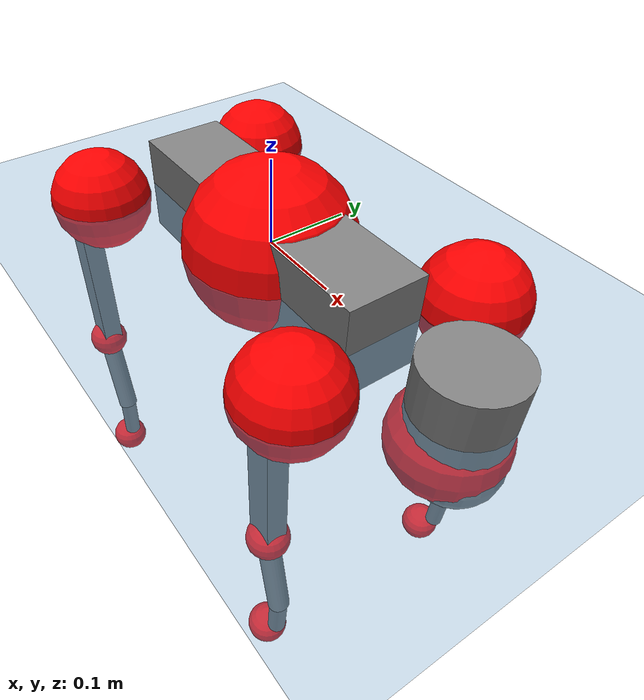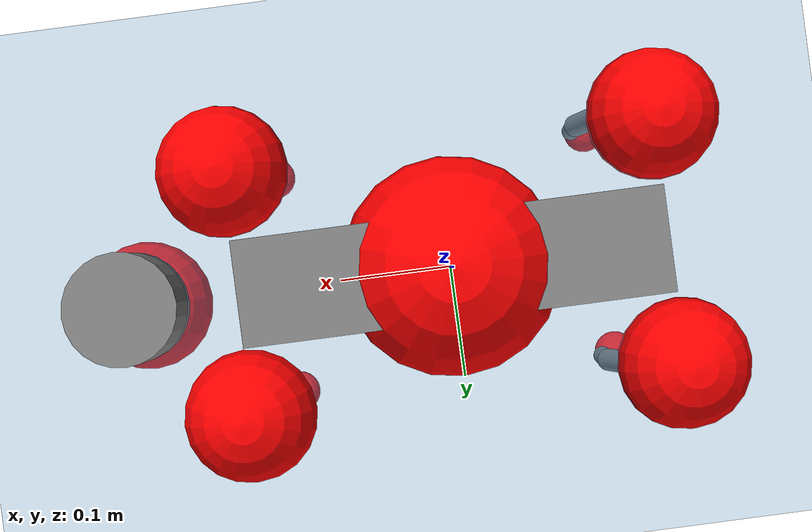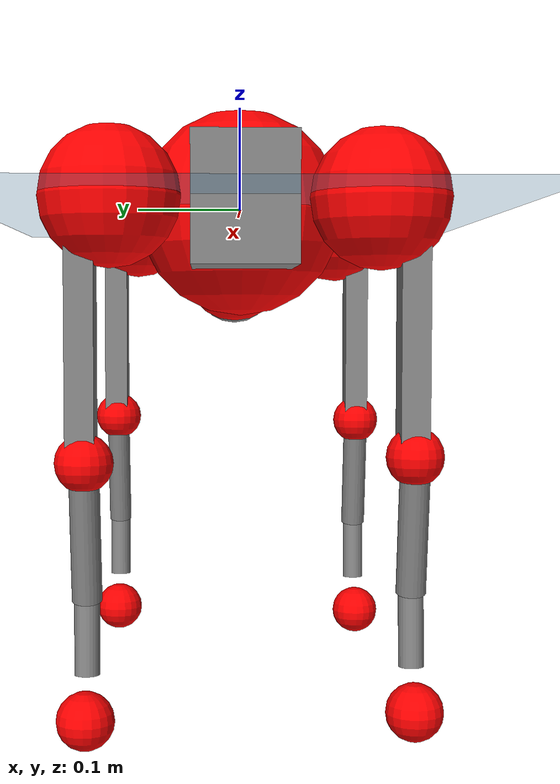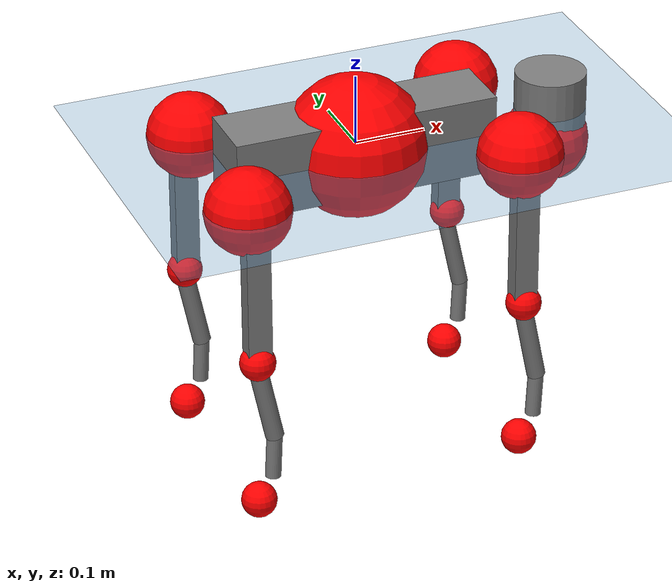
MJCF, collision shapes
<mujoco model="go2">
  <compiler angle="radian" assetdir="assets" balanceinertia="true" inertiafromgeom="false"/>

  <option timestep="0.005" density="1.2" viscosity="2e-05"/>

  <size nkey="1"/>

  <visual>
    <quality shadowsize="8192"/>
    <map shadowclip="0.5"/>
  </visual>

  <default>
    <default class="/">
      <geom contype="0" conaffinity="0" group="1" solref="-1000 -80"/>
      <site size="0.01 0.005 0.005" group="5"/>
      <general forcelimited="true" biastype="affine" gainprm="20" biasprm="0 -20 -0.5"/>
      <default class="go2">
        <joint armature="0.01" damping="0.01" frictionloss="0.2"/>
        <geom condim="1" margin="0.001"/>
        <default class="visual">
          <geom type="mesh" group="2"/>
        </default>
        <default class="collision">
          <geom group="3"/>
          <default class="foot">
            <geom size="0.022 0 0" condim="6" priority="1" friction="0.8 0.02 0.01" solimp="0.015 1 0.022"/>
          </default>
        </default>
        <default class="reward_collision_sphere">
          <geom group="5" rgba="1 0 0 1"/>
        </default>
      </default>
    </default>
  </default>

  <asset>
    <texture type="skybox" colorspace="auto" name="//unnamed_texture_0" builtin="gradient" rgb1="0.95 0.95 0.95" rgb2="0.95 0.95 0.95" width="100" height="600"/>
    <texture type="2d" colorspace="auto" name="texplane" builtin="checker" rgb1="0.345 0.575 0.748" rgb2="0.345 0.575 0.748" markrgb="1 1 1" width="512" height="512"/>
    <material name="MatPlane" class="/" texture="texplane" texuniform="true" texrepeat="2 2" specular="0.9"/>
    <material name="metal" class="/" rgba="0.9 0.95 0.95 1"/>
    <material name="black" class="/" rgba="0 0 0 1"/>
    <material name="white" class="/"/>
    <material name="gray" class="/" rgba="0.671705 0.692426 0.77427 1"/>
    <mesh name="base_0" class="/" file="base_0.obj"/>
    <mesh name="base_1" class="/" file="base_1.obj"/>
    <mesh name="base_2" class="/" file="base_2.obj"/>
    <mesh name="base_3" class="/" file="base_3.obj"/>
    <mesh name="base_4" class="/" file="base_4.obj"/>
    <mesh name="hip_0" class="/" file="hip_0.obj"/>
    <mesh name="hip_1" class="/" file="hip_1.obj"/>
    <mesh name="thigh_0" class="/" file="thigh_0.obj"/>
    <mesh name="thigh_1" class="/" file="thigh_1.obj"/>
    <mesh name="thigh_mirror_0" class="/" file="thigh_mirror_0.obj"/>
    <mesh name="thigh_mirror_1" class="/" file="thigh_mirror_1.obj"/>
    <mesh name="calf_0" class="/" file="calf_0.obj"/>
    <mesh name="calf_1" class="/" file="calf_1.obj"/>
    <mesh name="calf_mirror_0" class="/" file="calf_mirror_0.obj"/>
    <mesh name="calf_mirror_1" class="/" file="calf_mirror_1.obj"/>
    <mesh name="foot" class="/" file="foot.obj"/>
  </asset>

  <worldbody>
    <geom name="floor" class="/" size="100 100 0.125" type="plane" group="0" material="MatPlane"/>
    <light name="toplight_shadow" class="/" pos="0 0 5" dir="0.0990148 0.0990148 -0.990148" type="directional" ambient="0.04 0.04 0.04" diffuse="0.55 0.55 0.55" specular="0.12 0.12 0.12"/>
    <light name="toplight_fill" class="/" pos="0 0 5" dir="0.0990148 0.0990148 -0.990148" type="directional" castshadow="false" ambient="0.04 0.04 0.04" diffuse="0.3 0.3 0.3" specular="0.08 0.08 0.08"/>
    <body name="trunk" childclass="go2" pos="-0.00087627 -0.000321595 -0.00264755" quat="1 -0.0002336 6.69218e-05 -0.000213257">
      <inertial pos="0.0191297 -0.00177123 -0.00301557" quat="-0.00954804 0.709651 -0.00185539 0.704486" mass="7.15024" diaginertia="0.126476 0.0821614 0.0291819"/>
      <joint name="//unnamed_joint_0" type="free" armature="0" damping="0" frictionloss="0"/>
      <geom name="//unnamed_geom_1" class="visual" material="black" mesh="base_0"/>
      <geom name="//unnamed_geom_2" class="visual" material="black" mesh="base_1"/>
      <geom name="//unnamed_geom_3" class="visual" material="black" mesh="base_2"/>
      <geom name="//unnamed_geom_4" class="visual" material="white" mesh="base_3"/>
      <geom name="//unnamed_geom_5" class="visual" material="gray" mesh="base_4"/>
      <geom name="trunk_1" class="collision" size="0.188942 0.0469593 0.0572552" type="box"/>
      <geom name="trunk_2" class="collision" size="0.0502239 0.0452015" pos="0.291464 0 0.0102941" type="cylinder"/>
      <geom name="trunk_3" class="collision" size="0.0472105" pos="0.299645 0 -0.0617646"/>
      <geom name="//unnamed_geom_9" class="reward_collision_sphere" size="0.100448"/>
      <geom name="//unnamed_geom_10" class="reward_collision_sphere" size="0.0602687" pos="0.28635 0 -0.0463234"/>
      <site name="imu" pos="-0.0278426 0.00143935 0.0516944" size="0.0100448"/>
      <camera name="track" pos="0 -1.92269 0" quat="0.707107 0.707107 0 0" mode="trackcom"/>
      <camera name="ego_camera" pos="0.319076 0 0.0463234" quat="-0.5 -0.5 0.5 0.5"/>
      <body name="FL_hip" pos="0.197089 0.0437081 0.003432" quat="0.999999 0.000679232 0.000528202 -0.000984532">
        <inertial pos="-0.00404481 -0.000387273 0.000863669" quat="0.508752 0.493722 0.5046 0.492737" mass="0.683496" diaginertia="0.000986517 0.000495694 0.000574721"/>
        <joint name="FL_hip_joint" pos="0 0 0" axis="0.999952 -0.00965336 -0.00148741" range="-1.02808 1.10667" armature="0.0105162" damping="0.0146436" frictionloss="0.198125"/>
        <geom name="//unnamed_geom_11" class="visual" material="metal" mesh="hip_0"/>
        <geom name="//unnamed_geom_12" class="visual" material="gray" mesh="hip_1"/>
        <geom name="//unnamed_geom_13" class="collision" size="0.046206 0.0200896" pos="0 0.0769075 0" quat="0.707107 0.707107 0 0" type="cylinder"/>
        <geom name="//unnamed_geom_14" class="reward_collision_sphere" size="0.0602687" pos="0 0.0672941 0"/>
        <body name="FL_thigh" pos="-0.00179637 0.0916251 0.00176173" quat="1 4.16717e-05 -6.15809e-05 1.12283e-05">
          <inertial pos="-0.00142042 -0.0218193 -0.0322306" quat="0.829006 0.0788895 -0.0159562 0.553417" mass="1.1932" diaginertia="0.00646264 0.00472572 0.001"/>
          <joint name="FL_thigh_joint" pos="0 0 0" axis="-0.00453937 0.999986 0.0028907" stiffness="0.00490572" range="-1.59318 3.51413" armature="0.0100956" damping="0" frictionloss="0.184671"/>
          <geom name="//unnamed_geom_15" class="visual" material="metal" mesh="thigh_0"/>
          <geom name="//unnamed_geom_16" class="visual" material="gray" mesh="thigh_1"/>
          <geom name="//unnamed_geom_17" class="collision" size="0.106977 0.0123049 0.0170761" pos="0 0 -0.109632" quat="0.707107 0 0.707107 0" type="box"/>
          <body name="FL_calf" pos="0.00211484 -0.00140915 -0.219866" quat="0.999999 -0.000676367 -0.000690845 -0.00069266">
            <inertial pos="0.00532987 -0.000545886 -0.146538" quat="0.714213 0.00475253 -0.00664866 0.699881" mass="0.238782" diaginertia="0.00161066 0.00119884 5.86784e-05"/>
            <joint name="FL_calf_joint" pos="0 0 0" axis="0.0056945 0.999431 0.0332503" range="-2.77899 -0.789687" armature="0.0114253" damping="0.00261635" frictionloss="0.228986"/>
            <geom name="//unnamed_geom_18" class="visual" material="gray" mesh="calf_0"/>
            <geom name="//unnamed_geom_19" class="visual" material="black" mesh="calf_1"/>
            <geom name="FL_calf0" class="collision" size="0.0120537 0.0602687" pos="0.00818144 0 -0.0617646" quat="0.994493 0 -0.104807 0" type="cylinder"/>
            <geom name="//unnamed_geom_21" class="collision" size="0.0110493 0.0326455" pos="0.0204536 0 -0.152353" quat="0.999688 0 0.0249974 0" type="cylinder"/>
            <geom name="//unnamed_geom_22" class="visual" pos="0 0 -0.219264" quat="1 0 0 0" material="black" mesh="foot"/>
            <geom name="FL_foot" class="foot" size="0.0153526" pos="-0.00204536 0 -0.219264"/>
            <geom name="//unnamed_geom_24" class="reward_collision_sphere" size="0.0251119"/>
            <geom name="//unnamed_geom_25" class="reward_collision_sphere" size="0.0251119" pos="-0.00204536 0 -0.219264"/>
            <site name="FL_foot" class="foot" pos="-0.00204536 0 -0.219264" size="0.0100448"/>
          </body>
        </body>
      </body>
      <body name="FR_hip" pos="0.195511 -0.0448605 -0.00104901" quat="1 4.92486e-05 2.5697e-05 1.23787e-05">
        <inertial pos="-0.00373753 -0.00102007 -0.00135645" quat="0.498785 0.50489 0.498729 0.497564" mass="0.700709" diaginertia="0.000990249 0.000524419 0.000572995"/>
        <joint name="FR_hip_joint" pos="0 0 0" axis="0.999931 -0.0105973 -0.00513512" range="-1.07804 1.04555" armature="0.0092489" damping="0" frictionloss="0.185266"/>
        <geom name="//unnamed_geom_26" class="visual" pos="0 -5.92959e-10 -2.54332e-08" quat="4.63268e-05 1 0 0" material="metal" mesh="hip_0"/>
        <geom name="//unnamed_geom_27" class="visual" pos="0 -9.61258e-10 6.29061e-08" quat="4.63268e-05 1 0 0" material="gray" mesh="hip_1"/>
        <geom name="//unnamed_geom_28" class="collision" size="0.046206 0.0200896" pos="0 -0.0769075 0" quat="0.707107 0.707107 0 0" type="cylinder"/>
        <geom name="//unnamed_geom_29" class="reward_collision_sphere" size="0.0602687" pos="0 -0.0672941 0"/>
        <body name="FR_thigh" pos="-0.00239228 -0.0905289 -0.00203366" quat="1 8.79856e-05 -0.000212918 7.73653e-05">
          <inertial pos="-0.0035688 0.0213328 -0.0327018" quat="0.550646 -0.016023 0.0769762 0.831028" mass="1.11835" diaginertia="0.00638969 0.00481558 0.0010187"/>
          <joint name="FR_thigh_joint" pos="0 0 0" axis="-0.00211627 -0.999973 0.00705708" range="-3.48194 1.6232" armature="0.0102736" damping="0" frictionloss="0.197326"/>
          <geom name="//unnamed_geom_30" class="visual" material="metal" mesh="thigh_mirror_0"/>
          <geom name="//unnamed_geom_31" class="visual" material="gray" mesh="thigh_mirror_1"/>
          <geom name="//unnamed_geom_32" class="collision" size="0.106977 0.0123049 0.0170761" pos="0 0 -0.109632" quat="0.707107 0 0.707107 0" type="box"/>
          <body name="FR_calf" pos="0.00138128 -0.000883958 -0.216528" quat="1 4.93253e-05 0.00042046 8.86528e-05">
            <inertial pos="0.00601284 0.00179423 -0.14442" quat="0.712614 0.00065183 0.00422431 0.701543" mass="0.2449" diaginertia="0.00165563 0.00116865 6.06366e-05"/>
            <joint name="FR_calf_joint" pos="0 0 0" axis="-0.00789242 -0.999961 0.00384618" range="0.780488 2.77687" armature="0.00912218" damping="0.00858847" frictionloss="0.193587"/>
            <geom name="//unnamed_geom_33" class="visual" material="gray" mesh="calf_mirror_0"/>
            <geom name="//unnamed_geom_34" class="visual" material="black" mesh="calf_mirror_1"/>
            <geom name="FR_calf0" class="collision" size="0.0130582 0.0602687" pos="0.0102268 0 -0.0617646" quat="0.995004 0 -0.0998334 0" type="cylinder"/>
            <geom name="//unnamed_geom_36" class="collision" size="0.0110493 0.0326455" pos="0.0204536 0 -0.152353" quat="0.999688 0 0.0249974 0" type="cylinder"/>
            <geom name="//unnamed_geom_37" class="visual" pos="0 0 -0.219264" quat="1 0 0 0" material="black" mesh="foot"/>
            <geom name="FR_foot" class="foot" size="0.0227736" pos="-0.00204536 0 -0.219264"/>
            <geom name="//unnamed_geom_39" class="reward_collision_sphere" size="0.0251119"/>
            <geom name="//unnamed_geom_40" class="reward_collision_sphere" size="0.0251119" pos="-0.00204536 0 -0.219264"/>
            <site name="FR_foot" class="foot" pos="-0.00204536 0 -0.219264" size="0.0100448"/>
          </body>
        </body>
      </body>
      <body name="RL_hip" pos="-0.198239 0.0473353 -0.00109092" quat="1 0.000725105 0.000259191 -0.000571683">
        <inertial pos="0.00806456 0.00335718 -0.00127938" quat="0.516715 0.496673 0.488977 0.497215" mass="0.691499" diaginertia="0.000940445 0.000481722 0.000530702"/>
        <joint name="RL_hip_joint" pos="0 0 0" axis="-0.999995 -0.00187933 0.00235343" range="-1.00234 1.05318" armature="0.00922514" damping="0" frictionloss="0.210186"/>
        <geom name="//unnamed_geom_41" class="visual" pos="5.86316e-11 0 1.14932e-08" quat="4.63268e-05 0 1 0" material="metal" mesh="hip_0"/>
        <geom name="//unnamed_geom_42" class="visual" pos="9.5049e-11 0 1.01928e-08" quat="4.63268e-05 0 1 0" material="gray" mesh="hip_1"/>
        <geom name="//unnamed_geom_43" class="collision" size="0.046206 0.0200896" pos="0 0.0769075 0" quat="0.707107 0.707107 0 0" type="cylinder"/>
        <geom name="//unnamed_geom_44" class="reward_collision_sphere" size="0.0602687" pos="0 0.0672941 0"/>
        <body name="RL_thigh" pos="-0.00277813 0.0914422 -0.00188942" quat="1 -3.72082e-05 -1.77001e-05 2.37098e-05">
          <inertial pos="-0.0036141 -0.0190957 -0.0335055" quat="0.829844 0.0803639 -0.021848 0.551745" mass="1.17106" diaginertia="0.00669308 0.00463774 0.00104"/>
          <joint name="RL_thigh_joint" pos="0 0 0" axis="0.00187358 0.999996 -0.00206559" stiffness="0.0126404" range="-0.529024 4.55125" armature="0.00864052" damping="0" frictionloss="0.22266"/>
          <geom name="//unnamed_geom_45" class="visual" material="metal" mesh="thigh_0"/>
          <geom name="//unnamed_geom_46" class="visual" material="gray" mesh="thigh_1"/>
          <geom name="//unnamed_geom_47" class="collision" size="0.106977 0.0123049 0.0170761" pos="0 0 -0.109632" quat="0.707107 0 0.707107 0" type="box"/>
          <body name="RL_calf" pos="-0.00268709 -0.00254197 -0.221904" quat="0.999999 -0.000516346 -5.74711e-05 0.000906991">
            <inertial pos="0.00618404 -0.000789904 -0.144422" quat="0.710288 0.000424498 -0.00441293 0.703897" mass="0.245215" diaginertia="0.0016534 0.00119955 6.14999e-05"/>
            <joint name="RL_calf_joint" pos="0 0 0" axis="-0.00557508 0.999974 -0.00459173" range="-2.73232 -0.837656" armature="0.00895756" damping="0.00419643" frictionloss="0.228644"/>
            <geom name="//unnamed_geom_48" class="visual" material="gray" mesh="calf_0"/>
            <geom name="//unnamed_geom_49" class="visual" material="black" mesh="calf_1"/>
            <geom name="RL_calf0" class="collision" size="0.0130582 0.0602687" pos="0.0102268 0 -0.0617646" quat="0.995004 0 -0.0998334 0" type="cylinder"/>
            <geom name="//unnamed_geom_51" class="collision" size="0.0110493 0.0326455" pos="0.0204536 0 -0.152353" quat="0.999688 0 0.0249974 0" type="cylinder"/>
            <geom name="//unnamed_geom_52" class="visual" pos="0 0 -0.219264" quat="1 0 0 0" material="black" mesh="foot"/>
            <geom name="RL_foot" class="foot" size="0.0179922" pos="-0.00204536 0 -0.219264"/>
            <geom name="//unnamed_geom_54" class="reward_collision_sphere" size="0.0251119"/>
            <geom name="//unnamed_geom_55" class="reward_collision_sphere" size="0.0251119" pos="-0.00204536 0 -0.219264"/>
            <site name="RL_foot" class="foot" pos="-0.00204536 0 -0.219264" size="0.0100448"/>
          </body>
        </body>
      </body>
      <body name="RR_hip" pos="-0.19899 -0.0464752 -0.00294386" quat="0.999999 0.000101596 -0.00108058 0.000436982">
        <inertial pos="0.00432017 -0.00152519 0.00169189" quat="0.498758 0.499572 0.501876 0.499789" mass="0.661984" diaginertia="0.000958729 0.000473413 0.000530956"/>
        <joint name="RR_hip_joint" pos="0 0 0" axis="-0.999996 0.00279797 -0.000825852" range="-1.08488 1.05501" armature="0.00979129" damping="0.00286425" frictionloss="0.20609"/>
        <geom name="//unnamed_geom_56" class="visual" pos="-6.07553e-11 -5.92959e-10 3.69264e-08" quat="2.14617e-09 4.63268e-05 4.63268e-05 -1" material="metal" mesh="hip_0"/>
        <geom name="//unnamed_geom_57" class="visual" pos="-8.9797e-11 -9.61258e-10 -5.27133e-08" quat="2.14617e-09 4.63268e-05 4.63268e-05 -1" material="gray" mesh="hip_1"/>
        <geom name="//unnamed_geom_58" class="collision" size="0.046206 0.0200896" pos="0 -0.0769075 0" quat="0.707107 0.707107 0 0" type="cylinder"/>
        <geom name="//unnamed_geom_59" class="reward_collision_sphere" size="0.0602687" pos="0 -0.0672941 0"/>
        <body name="RR_thigh" pos="-0.000997351 -0.094856 0.000482453" quat="1 -0.000413674 -0.000160213 -0.000437481">
          <inertial pos="-0.00113963 0.0208254 -0.0333803" quat="0.551885 -0.0200707 0.0846932 0.829365" mass="1.15881" diaginertia="0.00650358 0.00474606 0.00102637"/>
          <joint name="RR_thigh_joint" pos="0 0 0" axis="0.0130043 -0.999907 0.00409471" stiffness="0.00339861" range="-4.5556 0.534971" armature="0.00880908" damping="0.000579772" frictionloss="0.204896"/>
          <geom name="//unnamed_geom_60" class="visual" material="metal" mesh="thigh_mirror_0"/>
          <geom name="//unnamed_geom_61" class="visual" material="gray" mesh="thigh_mirror_1"/>
          <geom name="//unnamed_geom_62" class="collision" size="0.106977 0.0123049 0.0170761" pos="0 0 -0.109632" quat="0.707107 0 0.707107 0" type="box"/>
          <body name="RR_calf" pos="-0.00101681 -0.00190741 -0.218009" quat="0.999999 -0.00117775 0.000423409 0.00036299">
            <inertial pos="0.00382453 0.000881878 -0.14671" quat="0.707305 0.00292034 -0.00186304 0.7069" mass="0.239954" diaginertia="0.00158864 0.00121779 5.99835e-05"/>
            <joint name="RR_calf_joint" pos="0 0 0" axis="-0.00125546 -0.999988 -0.00482725" stiffness="0.00856676" range="0.830856 2.69201" armature="0.00971983" damping="0.0247822" frictionloss="0.202421"/>
            <geom name="//unnamed_geom_63" class="visual" material="gray" mesh="calf_mirror_0"/>
            <geom name="//unnamed_geom_64" class="visual" material="black" mesh="calf_mirror_1"/>
            <geom name="RR_calf0" class="collision" size="0.0130582 0.0602687" pos="0.0102268 0 -0.0617646" quat="0.995004 0 -0.0998334 0" type="cylinder"/>
            <geom name="//unnamed_geom_66" class="collision" size="0.0110493 0.0326455" pos="0.0204536 0 -0.152353" quat="0.999688 0 0.0249974 0" type="cylinder"/>
            <geom name="//unnamed_geom_67" class="visual" pos="0 0 -0.219264" quat="1 0 0 0" material="black" mesh="foot"/>
            <geom name="RR_foot" class="foot" size="0.0198574" pos="-0.00204536 0 -0.219264"/>
            <geom name="//unnamed_geom_69" class="reward_collision_sphere" size="0.0251119"/>
            <geom name="//unnamed_geom_70" class="reward_collision_sphere" size="0.0251119" pos="-0.00204536 0 -0.219264"/>
            <site name="RR_foot" class="foot" pos="-0.00204536 0 -0.219264" size="0.0100448"/>
          </body>
        </body>
      </body>
    </body>
  </worldbody>

  <contact>
    <pair class="/" geom1="floor" geom2="FL_foot" name="//unnamed_contact_0"/>
    <pair class="/" geom1="floor" geom2="FR_foot" name="//unnamed_contact_1"/>
    <pair class="/" geom1="floor" geom2="RL_foot" name="//unnamed_contact_2"/>
    <pair class="/" geom1="floor" geom2="RR_foot" name="//unnamed_contact_3"/>
  </contact>

  <actuator>
    <general name="FL_hip" class="/" joint="FL_hip_joint" forcerange="-23.7236 23.7236" gainprm="20.6337" biasprm="0 -20.6337 -0.483292"/>
    <general name="FL_thigh" class="/" joint="FL_thigh_joint" forcerange="-21.2572 21.2572" gainprm="20.6337" biasprm="0 -20.6337 -0.483292"/>
    <general name="FL_calf" class="/" joint="FL_calf_joint" forcerange="-43.4115 43.4115" gainprm="20.6337" biasprm="0 -20.6337 -0.483292"/>
    <general name="FR_hip" class="/" joint="FR_hip_joint" forcerange="-21.2537 21.2537" gainprm="20.6337" biasprm="0 -20.6337 -0.483292"/>
    <general name="FR_thigh" class="/" joint="FR_thigh_joint" forcerange="-26.1434 26.1434" gainprm="20.6337" biasprm="0 -20.6337 -0.483292"/>
    <general name="FR_calf" class="/" joint="FR_calf_joint" forcerange="-42.4441 42.4441" gainprm="20.6337" biasprm="0 -20.6337 -0.483292"/>
    <general name="RL_hip" class="/" joint="RL_hip_joint" forcerange="-23.8688 23.8688" gainprm="20.6337" biasprm="0 -20.6337 -0.483292"/>
    <general name="RL_thigh" class="/" joint="RL_thigh_joint" forcerange="-22.4442 22.4442" gainprm="20.6337" biasprm="0 -20.6337 -0.483292"/>
    <general name="RL_calf" class="/" joint="RL_calf_joint" forcerange="-43.8631 43.8631" gainprm="20.6337" biasprm="0 -20.6337 -0.483292"/>
    <general name="RR_hip" class="/" joint="RR_hip_joint" forcerange="-21.9708 21.9708" gainprm="20.6337" biasprm="0 -20.6337 -0.483292"/>
    <general name="RR_thigh" class="/" joint="RR_thigh_joint" forcerange="-23.08 23.08" gainprm="20.6337" biasprm="0 -20.6337 -0.483292"/>
    <general name="RR_calf" class="/" joint="RR_calf_joint" forcerange="-48.8756 48.8756" gainprm="20.6337" biasprm="0 -20.6337 -0.483292"/>
  </actuator>

  <sensor>
    <gyro site="imu" name="imu_angular_velocity"/>
    <velocimeter site="imu" name="imu_linear_velocity"/>
    <framelinvel objtype="site" objname="FL_foot" name="FL_foot_global_linear_velocity"/>
    <framelinvel objtype="site" objname="FR_foot" name="FR_foot_global_linear_velocity"/>
    <framelinvel objtype="site" objname="RL_foot" name="RL_foot_global_linear_velocity"/>
    <framelinvel objtype="site" objname="RR_foot" name="RR_foot_global_linear_velocity"/>
  </sensor>

  <keyframe>
    <key name="home" qpos="0 0 0.325 1 0 0 0 0.1 0.8 -1.5 -0.1 -0.8 1.5 -0.1 0.8 -1.5 0.1 -0.8 1.5"/>
  </keyframe>
</mujoco>
